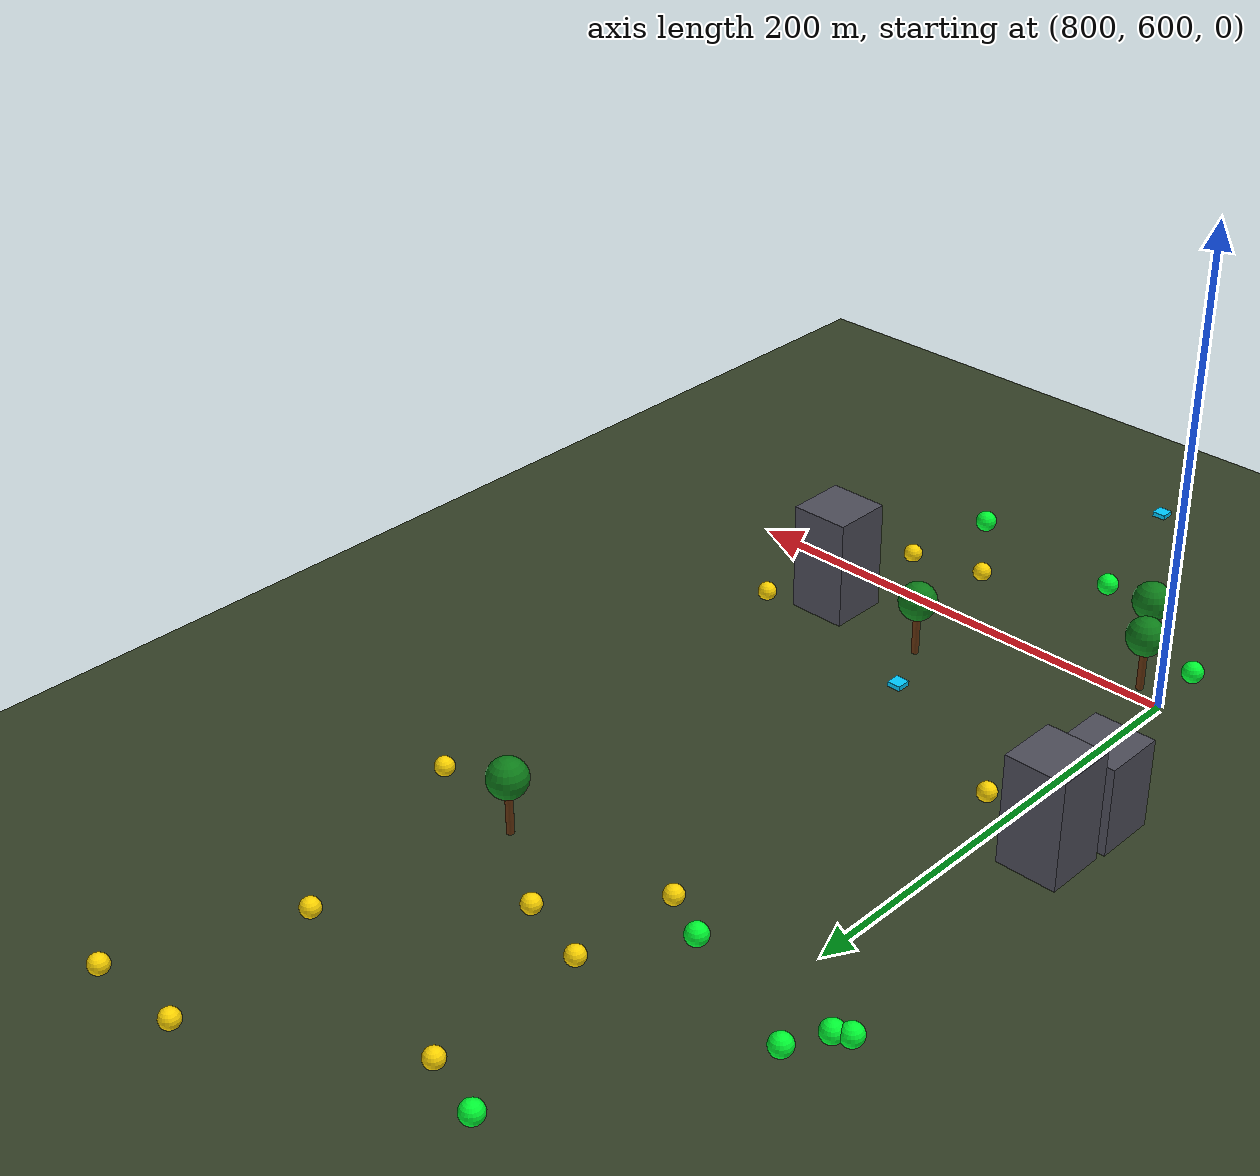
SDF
<sdf version="1.8">
 <world name="darar_world">
  <model name="ground_plane">
   <static>true</static>
   <pose>500 500 0 0 0 0</pose>
   <link name="link">
    <collision name="collision">
     <geometry><plane><normal>0 0 1</normal><size>1000 1000</size></plane></geometry>
    </collision>
    <visual name="visual">
     <geometry><plane><normal>0 0 1</normal><size>1000 1000</size></plane></geometry>
     <material><ambient>0.2 0.25 0.15 1</ambient><diffuse>0.2 0.25 0.15 1</diffuse></material>
    </visual>
   </link>
  </model>
  <model name="static_building_4">
   <static>true</static>
   <pose>775.2 678.3 16.2 0 0 0</pose>
   <link name="link">
    <visual name="vis">
     <geometry><box><size>25 25 40.3</size></box></geometry>
     <material><ambient>0.3 0.3 0.35 1</ambient><diffuse>0.3 0.3 0.35 1</diffuse></material>
    </visual>
   </link>
  </model>
  <model name="tree_5">
   <static>true</static>
   <pose>812.7 593.4 12.0 0 0 0</pose>
   <link name="link">
    <visual name="trunk">
     <geometry><cylinder><radius>1.5</radius><length>24.0</length></cylinder></geometry>
     <material><ambient>0.4 0.2 0.05 1</ambient></material>
    </visual>
    <visual name="canopy">
     <pose>0 0 12 0 0 0</pose>
     <geometry><sphere><radius>8.0</radius></sphere></geometry>
     <material><ambient>0.05 0.5 0.1 1</ambient></material>
    </visual>
   </link>
  </model>
  <model name="static_building_6">
   <static>true</static>
   <pose>776.4 706.8 20.6 0 0 0</pose>
   <link name="link">
    <visual name="vis">
     <geometry><box><size>25 25 49.1</size></box></geometry>
     <material><ambient>0.3 0.3 0.35 1</ambient><diffuse>0.3 0.3 0.35 1</diffuse></material>
    </visual>
   </link>
  </model>
  <model name="tree_7">
   <static>true</static>
   <pose>825.5 569.6 12.0 0 0 0</pose>
   <link name="link">
    <visual name="trunk">
     <geometry><cylinder><radius>1.5</radius><length>24.0</length></cylinder></geometry>
     <material><ambient>0.4 0.2 0.05 1</ambient></material>
    </visual>
    <visual name="canopy">
     <pose>0 0 12 0 0 0</pose>
     <geometry><sphere><radius>8.0</radius></sphere></geometry>
     <material><ambient>0.05 0.5 0.1 1</ambient></material>
    </visual>
   </link>
  </model>
  <model name="tree_10">
   <static>true</static>
   <pose>893.0 633.2 12.0 0 0 0</pose>
   <link name="link">
    <visual name="trunk">
     <geometry><cylinder><radius>1.5</radius><length>24.0</length></cylinder></geometry>
     <material><ambient>0.4 0.2 0.05 1</ambient></material>
    </visual>
    <visual name="canopy">
     <pose>0 0 12 0 0 0</pose>
     <geometry><sphere><radius>8.0</radius></sphere></geometry>
     <material><ambient>0.05 0.5 0.1 1</ambient></material>
    </visual>
   </link>
  </model>
  <model name="static_building_12">
   <static>true</static>
   <pose>940.6 626.0 21.0 0 0 0</pose>
   <link name="link">
    <visual name="vis">
     <geometry><box><size>25 25 50.1</size></box></geometry>
     <material><ambient>0.3 0.3 0.35 1</ambient><diffuse>0.3 0.3 0.35 1</diffuse></material>
    </visual>
   </link>
  </model>
  <model name="tree_19">
   <static>true</static>
   <pose>924.0 824.7 12.0 0 0 0</pose>
   <link name="link">
    <visual name="trunk">
     <geometry><cylinder><radius>1.5</radius><length>24.0</length></cylinder></geometry>
     <material><ambient>0.4 0.2 0.05 1</ambient></material>
    </visual>
    <visual name="canopy">
     <pose>0 0 12 0 0 0</pose>
     <geometry><sphere><radius>8.0</radius></sphere></geometry>
     <material><ambient>0.05 0.5 0.1 1</ambient></material>
    </visual>
   </link>
  </model>
  <model name="static_victim_7">
   <static>true</static>
   <pose>887.9 848.3 2.0 0 0 0</pose>
   <link name="link">
    <visual name="vis">
     <geometry><sphere><radius>4.0</radius></sphere></geometry>
     <material><ambient>1 0.84 0 1</ambient><diffuse>1 0.84 0 1</diffuse></material>
    </visual>
   </link>
  </model>
  <model name="static_victim_14">
   <static>true</static>
   <pose>856.0 811.8 2.0 0 0 0</pose>
   <link name="link">
    <visual name="vis">
     <geometry><sphere><radius>4.0</radius></sphere></geometry>
     <material><ambient>1 0.84 0 1</ambient><diffuse>1 0.84 0 1</diffuse></material>
    </visual>
   </link>
  </model>
  <model name="static_victim_16">
   <static>true</static>
   <pose>855.3 920.1 2.0 0 0 0</pose>
   <link name="link">
    <visual name="vis">
     <geometry><sphere><radius>4.0</radius></sphere></geometry>
     <material><ambient>1 0.84 0 1</ambient><diffuse>1 0.84 0 1</diffuse></material>
    </visual>
   </link>
  </model>
  <model name="static_victim_25">
   <static>true</static>
   <pose>965.4 640.9 2.0 0 0 0</pose>
   <link name="link">
    <visual name="vis">
     <geometry><sphere><radius>4.0</radius></sphere></geometry>
     <material><ambient>1 0.84 0 1</ambient><diffuse>1 0.84 0 1</diffuse></material>
    </visual>
   </link>
  </model>
  <model name="static_victim_35">
   <static>true</static>
   <pose>909.4 566.8 2.0 0 0 0</pose>
   <link name="link">
    <visual name="vis">
     <geometry><sphere><radius>4.0</radius></sphere></geometry>
     <material><ambient>1 0.84 0 1</ambient><diffuse>1 0.84 0 1</diffuse></material>
    </visual>
   </link>
  </model>
  <model name="static_victim_49">
   <static>true</static>
   <pose>969.3 815.9 2.0 0 0 0</pose>
   <link name="link">
    <visual name="vis">
     <geometry><sphere><radius>4.0</radius></sphere></geometry>
     <material><ambient>1 0.84 0 1</ambient><diffuse>1 0.84 0 1</diffuse></material>
    </visual>
   </link>
  </model>
  <model name="static_victim_50">
   <static>true</static>
   <pose>940.9 900.8 2.0 0 0 0</pose>
   <link name="link">
    <visual name="vis">
     <geometry><sphere><radius>4.0</radius></sphere></geometry>
     <material><ambient>1 0.84 0 1</ambient><diffuse>1 0.84 0 1</diffuse></material>
    </visual>
   </link>
  </model>
  <model name="static_victim_57">
   <static>true</static>
   <pose>929.9 965.7 2.0 0 0 0</pose>
   <link name="link">
    <visual name="vis">
     <geometry><sphere><radius>4.0</radius></sphere></geometry>
     <material><ambient>1 0.84 0 1</ambient><diffuse>1 0.84 0 1</diffuse></material>
    </visual>
   </link>
  </model>
  <model name="static_victim_60">
   <static>true</static>
   <pose>940.6 574.4 2.0 0 0 0</pose>
   <link name="link">
    <visual name="vis">
     <geometry><sphere><radius>4.0</radius></sphere></geometry>
     <material><ambient>1 0.84 0 1</ambient><diffuse>1 0.84 0 1</diffuse></material>
    </visual>
   </link>
  </model>
  <model name="static_victim_77">
   <static>true</static>
   <pose>968.5 966.3 2.0 0 0 0</pose>
   <link name="link">
    <visual name="vis">
     <geometry><sphere><radius>4.0</radius></sphere></geometry>
     <material><ambient>1 0.84 0 1</ambient><diffuse>1 0.84 0 1</diffuse></material>
    </visual>
   </link>
  </model>
  <model name="static_victim_80">
   <static>true</static>
   <pose>858.0 856.5 2.0 0 0 0</pose>
   <link name="link">
    <visual name="vis">
     <geometry><sphere><radius>4.0</radius></sphere></geometry>
     <material><ambient>1 0.84 0 1</ambient><diffuse>1 0.84 0 1</diffuse></material>
    </visual>
   </link>
  </model>
  <model name="static_victim_82">
   <static>true</static>
   <pose>813.7 691.3 2.0 0 0 0</pose>
   <link name="link">
    <visual name="vis">
     <geometry><sphere><radius>4.0</radius></sphere></geometry>
     <material><ambient>1 0.84 0 1</ambient><diffuse>1 0.84 0 1</diffuse></material>
    </visual>
   </link>
  </model>
  <model name="dynamic_victim_0">
   <pose>863.5 541.0 3.5 0 0 0</pose>
   <link name="link">
    <visual name="vis">
     <geometry><sphere><radius>4.5</radius></sphere></geometry>
     <material><ambient>0 1 0.2 1</ambient><diffuse>0 1 0.2 1</diffuse></material>
    </visual>
   </link>
   <plugin filename="gz-sim-velocity-control-system" name="gz::sim::systems::VelocityControl">
    <topic>/model/dynamic_victim_0/cmd_vel</topic>
   </plugin>
  </model>
  <model name="dynamic_victim_1">
   <pose>801.1 574.3 3.5 0 0 0</pose>
   <link name="link">
    <visual name="vis">
     <geometry><sphere><radius>4.5</radius></sphere></geometry>
     <material><ambient>0 1 0.2 1</ambient><diffuse>0 1 0.2 1</diffuse></material>
    </visual>
   </link>
   <plugin filename="gz-sim-velocity-control-system" name="gz::sim::systems::VelocityControl">
    <topic>/model/dynamic_victim_1/cmd_vel</topic>
   </plugin>
  </model>
  <model name="dynamic_victim_4">
   <pose>766.5 824.6 3.5 0 0 0</pose>
   <link name="link">
    <visual name="vis">
     <geometry><sphere><radius>4.5</radius></sphere></geometry>
     <material><ambient>0 1 0.2 1</ambient><diffuse>0 1 0.2 1</diffuse></material>
    </visual>
   </link>
   <plugin filename="gz-sim-velocity-control-system" name="gz::sim::systems::VelocityControl">
    <topic>/model/dynamic_victim_4/cmd_vel</topic>
   </plugin>
  </model>
  <model name="dynamic_victim_10">
   <pose>828.1 928.6 3.5 0 0 0</pose>
   <link name="link">
    <visual name="vis">
     <geometry><sphere><radius>4.5</radius></sphere></geometry>
     <material><ambient>0 1 0.2 1</ambient><diffuse>0 1 0.2 1</diffuse></material>
    </visual>
   </link>
   <plugin filename="gz-sim-velocity-control-system" name="gz::sim::systems::VelocityControl">
    <topic>/model/dynamic_victim_10/cmd_vel</topic>
   </plugin>
  </model>
  <model name="dynamic_victim_11">
   <pose>779.7 843.3 3.5 0 0 0</pose>
   <link name="link">
    <visual name="vis">
     <geometry><sphere><radius>4.5</radius></sphere></geometry>
     <material><ambient>0 1 0.2 1</ambient><diffuse>0 1 0.2 1</diffuse></material>
    </visual>
   </link>
   <plugin filename="gz-sim-velocity-control-system" name="gz::sim::systems::VelocityControl">
    <topic>/model/dynamic_victim_11/cmd_vel</topic>
   </plugin>
  </model>
  <model name="dynamic_victim_14">
   <pose>772.0 827.7 3.5 0 0 0</pose>
   <link name="link">
    <visual name="vis">
     <geometry><sphere><radius>4.5</radius></sphere></geometry>
     <material><ambient>0 1 0.2 1</ambient><diffuse>0 1 0.2 1</diffuse></material>
    </visual>
   </link>
   <plugin filename="gz-sim-velocity-control-system" name="gz::sim::systems::VelocityControl">
    <topic>/model/dynamic_victim_14/cmd_vel</topic>
   </plugin>
  </model>
  <model name="dynamic_victim_17">
   <pose>835.0 822.7 3.5 0 0 0</pose>
   <link name="link">
    <visual name="vis">
     <geometry><sphere><radius>4.5</radius></sphere></geometry>
     <material><ambient>0 1 0.2 1</ambient><diffuse>0 1 0.2 1</diffuse></material>
    </visual>
   </link>
   <plugin filename="gz-sim-velocity-control-system" name="gz::sim::systems::VelocityControl">
    <topic>/model/dynamic_victim_17/cmd_vel</topic>
   </plugin>
  </model>
  <model name="dynamic_victim_25">
   <pose>933.0 532.6 3.5 0 0 0</pose>
   <link name="link">
    <visual name="vis">
     <geometry><sphere><radius>4.5</radius></sphere></geometry>
     <material><ambient>0 1 0.2 1</ambient><diffuse>0 1 0.2 1</diffuse></material>
    </visual>
   </link>
   <plugin filename="gz-sim-velocity-control-system" name="gz::sim::systems::VelocityControl">
    <topic>/model/dynamic_victim_25/cmd_vel</topic>
   </plugin>
  </model>
  <model name="uav_39">
   <pose>820.0 580.0 70.0 0 0 0</pose>
   <link name="link">
    <visual name="vis">
     <geometry><box><size>5 5 1.8</size></box></geometry>
     <material><ambient>0 0.8 1 1</ambient><diffuse>0 0.8 1 1</diffuse></material>
    </visual>
   </link>
   <plugin filename="gz-sim-velocity-control-system" name="gz::sim::systems::VelocityControl">
    <topic>/model/uav_39/cmd_vel</topic>
   </plugin>
  </model>
  <model name="uav_49">
   <pose>820.0 740.0 70.0 0 0 0</pose>
   <link name="link">
    <visual name="vis">
     <geometry><box><size>5 5 1.8</size></box></geometry>
     <material><ambient>0 0.8 1 1</ambient><diffuse>0 0.8 1 1</diffuse></material>
    </visual>
   </link>
   <plugin filename="gz-sim-velocity-control-system" name="gz::sim::systems::VelocityControl">
    <topic>/model/uav_49/cmd_vel</topic>
   </plugin>
  </model>
 </world>
</sdf>
